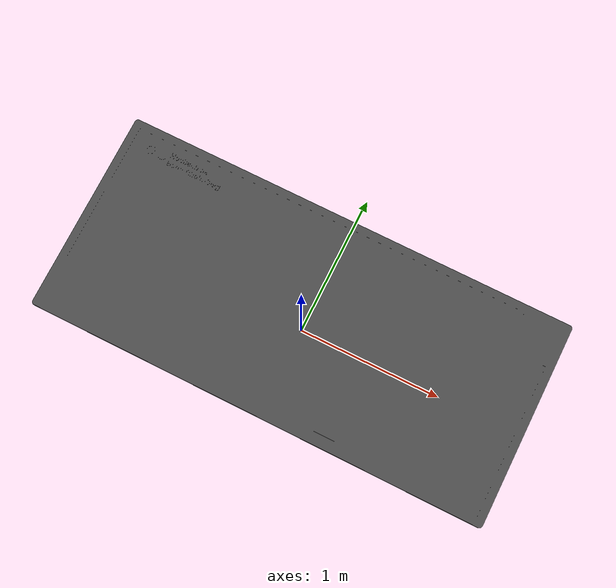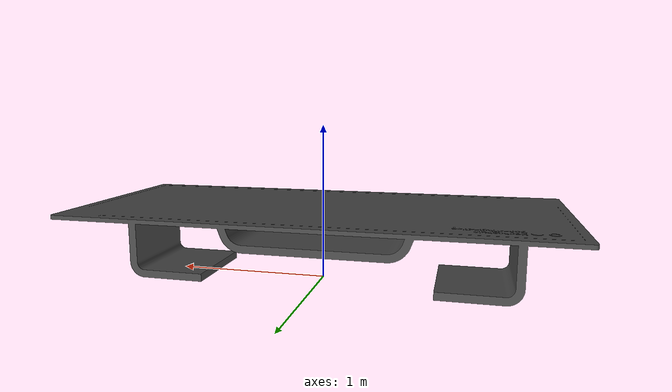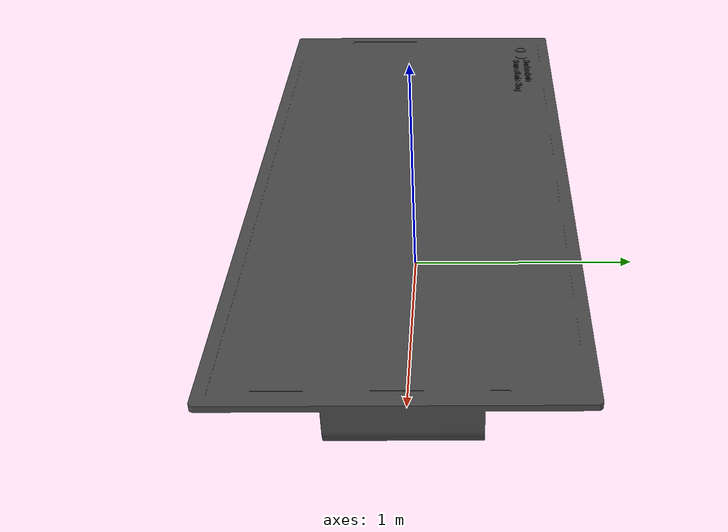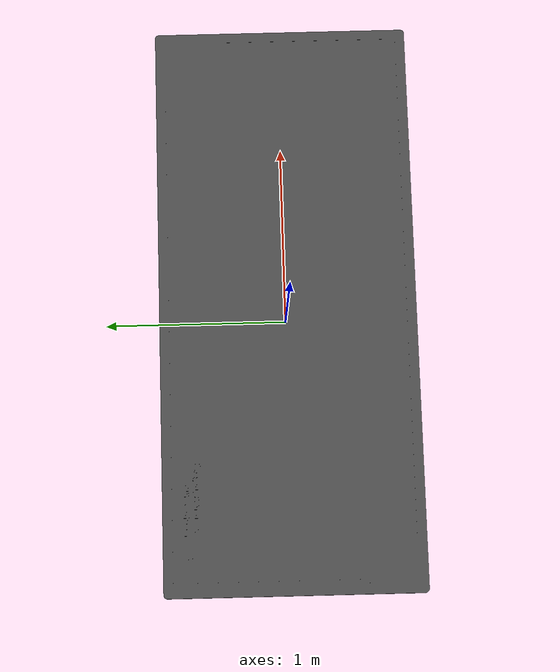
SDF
<?xml version='1.0'?>
<sdf version="1.5">
  <model name="table"> <!-- Very important to change-->
    <static>false</static>
    <pose>0 0 0 0 0 0</pose> <!-- Translation: X Y Z and Rotation: Roll Pitch Yaw (In Radian)-->
    <link name="body">

    <inertial> >
    <mass>177</mass>
      <inertia>
        <ixx>19.64</ixx>
        <ixy>-0.014</ixy>
        <ixz>0</ixz>
        <iyy>141</iyy>
        <iyz>0</iyz>
        <izz>152</izz>
      </inertia>
    </inertial>

       <collision name="collision"> <!-- You can use mesh like below -->
        <geometry>
          <mesh><!-- Very important to change-->
             <uri>/home/sorox23/robotic_ws/master_thesis_ws/src/property_based_tester/environment/models/table/meshes/table.stl</uri>
             <scale>0.001 0.001 0.001</scale>
          </mesh>
        </geometry>
      </collision>

      <visual name="visual">
        <geometry>
          <mesh><!-- Very important to change-->
             <uri>/home/sorox23/robotic_ws/master_thesis_ws/src/property_based_tester/environment/models/table/meshes/table.stl</uri>
             <scale>0.001 0.001 0.001</scale>
          </mesh>
        </geometry>

        <material>
          <script> <!-- Very important to change-->
             <uri>/home/sorox23/robotic_ws/master_thesis_ws/src/property_based_tester/environment/models/table/materials/scripts</uri>
             <uri>/home/sorox23/robotic_ws/master_thesis_ws/src/property_based_tester/environment/models/table/materials/textures</uri>
             <name>material Gazebo/DarkGrey</name>
          </script>
        </material>
      </visual>

    </link>
  </model>
</sdf>
